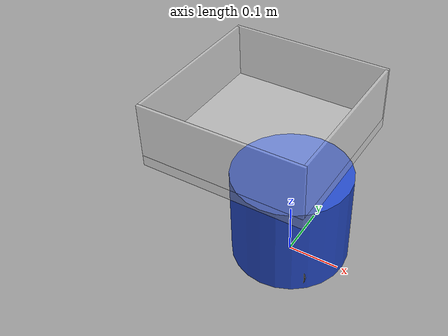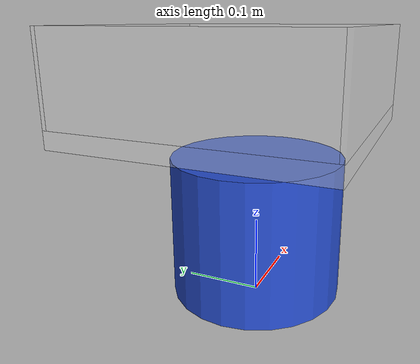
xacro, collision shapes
<?xml version="1.0"?>
<robot name="fra2mo" xmlns:xacro="http://www.ros.org/wiki/xacro">

  <xacro:include filename="$(find ros2_fra2mo)/urdf/fra2mo_base_macro.xacro"/>
  <xacro:include filename="$(find ros2_fra2mo)/urdf/lidar_gazebo_macro.xacro"/>

  <xacro:property name="LIDAR" value="True"/>

  <xacro:fra2mo_base/>

  <xacro:if value="${LIDAR}">
    <xacro:lidar_gazebo_sensor parent="lidar_link"/>
  </xacro:if>

  <gazebo>
    <plugin filename="libignition-gazebo-joint-state-publisher-system.so"
            name="ignition::gazebo::systems::JointStatePublisher">
      <topic>model/fra2mo/joint_state</topic>
    </plugin>
  </gazebo>

</robot>

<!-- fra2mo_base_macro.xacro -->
<robot xmlns:xacro="http://www.ros.org/wiki/xacro">
  <xacro:include filename="$(find ros2_fra2mo)/urdf/utility_macro.xacro" />

  <xacro:macro name="fra2mo_base">

    <xacro:property name="base_height" value="0.180" />
    <xacro:property name="base_radius" value="0.11" />
    <xacro:property name="base_mass" value="5" />
    <xacro:property name="wheel_mass" value="2.5" />
    <xacro:property name="wheel_radius" value="0.035" />
    <xacro:property name="wheel_axle" value="0.130" />
    <xacro:property name="wheel_width" value="0.04" />

    <link name="base_footprint">
    </link>

    <link name="base_link">
      <inertial>
        <origin xyz="0 0 0" />
        <mass value="${base_mass}" />
        <xacro:cylinder_inertia m="${base_mass}" r="${base_radius}" h="${base_height}" />
      </inertial>
      <visual>
        <geometry>
          <mesh filename="file://$(find ros2_fra2mo)/meshes/rl_fra2mo_body.stl" scale="0.001 0.001 0.001" />
        </geometry>
        <material name="Blue" />
        <origin xyz="0 0 0" rpy="0 0 0" />
      </visual>
      <collision>
        <geometry>
          <cylinder length="${base_height}" radius="${base_radius}" />
        </geometry>
        <origin xyz="0 0.0 ${(base_height/2.0)-0.05}" rpy="0 0 0" />
      </collision>
      <collision>
        <geometry>
          <sphere radius="0.019" />
        </geometry>
        <origin xyz="-0.0825 0.0 -0.04" rpy="0 0 0" />
      </collision>
    </link>

    <link name="left_wheel_link">
      <visual>
        <geometry>
          <mesh filename="file://$(find ros2_fra2mo)/meshes/rl_fra2mo_wheel.stl" scale="0.001 0.001 0.001" />
        </geometry>
        <material name="Black" />
        <origin xyz="0 0 0" rpy="0 0 0" />
      </visual>

      <collision>
        <geometry>
          <cylinder length="${wheel_width}" radius="${wheel_radius}" />
        </geometry>
        <origin xyz="0 0 0" rpy="${M_PI/2} 0 0" />
      </collision>

      <inertial>
        <origin xyz="0 0 0" />
        <mass value="${wheel_mass}" />
        <inertia ixx="0.001" ixy="0.0" ixz="0.0" iyy="0.001" iyz="0.0" izz="0.001" />
      </inertial>
    </link>

    <link name="right_wheel_link">
      <visual>
        <geometry>
          <mesh filename="file://$(find ros2_fra2mo)/meshes/rl_fra2mo_wheel.stl" scale="0.001 0.001 0.001" />
        </geometry>
        <material name="Black"/>
        <origin xyz="0 0 0" rpy="0 0 0" />
      </visual>

      <collision>
        <geometry>
           <cylinder length="${wheel_width}" radius="${wheel_radius}" />
        </geometry>
        <origin xyz="0 0 0" rpy="${M_PI/2} 0 0" />
      </collision>

      <inertial>
        <origin xyz="0 0 0" />
        <mass value="${wheel_mass}" />
        <inertia ixx="0.001" ixy="0.0" ixz="0.0" iyy="0.001" iyz="0.0" izz="0.001" />
      </inertial>
    </link>

    <link name="d435_link">
    </link>
    <link name="lidar_link" />

    <joint name="base_footprint_joint" type="fixed">
      <parent link="base_footprint" />
      <child link="base_link" />
      <origin xyz="0.0 0.0 0.059" rpy="0 0 0" />
    </joint>

    <joint name="left_wheel_joint" type="continuous">
      <parent link="base_link" />
      <child link="left_wheel_link" />
      <origin xyz="0.04025 0.062 -0.024" rpy="0 0 0" />
      <axis xyz="0 1 0" />
      <limit effort="100" velocity="100" />
      <dynamics damping="0.5" friction="0.01" />
    </joint>

    <joint name="right_wheel_joint" type="continuous">
      <parent link="base_link" />
      <child link="right_wheel_link" />
      <origin xyz="0.04025 -0.062 -0.024" rpy="0 0 ${-M_PI}" />
      <axis xyz="0 -1 0" />
      <limit effort="100" velocity="100" />
      <dynamics damping="0.5" friction="0.01" />
    </joint>

    <joint name="d435_joint" type="fixed">
      <parent link="base_link" />
      <child link="d435_link" />
      <origin xyz="0.090925 0.0 0.06670" rpy="0 0 0" />
    </joint>

    <joint name="lidar_joint" type="fixed">
      <parent link="base_link" />
      <child link="lidar_link" />
      <origin xyz="0.0 0.0 0.125" rpy="0 0 0" />
    </joint>

    <transmission name="left_wheel_joint_trans">
      <type>transmission_interface/SimpleTransmission</type>
      <joint name="left_wheel_joint" />
      <actuator name="left_wheel_joint_motor">
        <mechanicalReduction>1</mechanicalReduction>
        <hardwareInterface>EffortJointInterface</hardwareInterface>
      </actuator>
    </transmission>

    <transmission name="right_wheel_joint_trans">
      <type>transmission_interface/SimpleTransmission</type>
      <joint name="right_wheel_joint" />
      <actuator name="right_wheel_joint_motor">
        <mechanicalReduction>1</mechanicalReduction>
        <hardwareInterface>EffortJointInterface</hardwareInterface>
      </actuator>
    </transmission>

    <gazebo>
      <plugin name="ignition::gazebo::systems::DiffDrive" filename="libignition-gazebo-diff-drive-system.so">
        <left_joint>left_wheel_joint</left_joint>
        <right_joint>right_wheel_joint</right_joint>
        <wheel_separation>${2*0.062}</wheel_separation>
        <wheel_radius>${wheel_radius}</wheel_radius>
        <odom_publish_frequency>50</odom_publish_frequency>
        <topic>cmd_vel</topic>
      </plugin>
    </gazebo>

    <xacro:property name="basket_length" value="0.30" />
    <xacro:property name="basket_width" value="0.30" />
    <xacro:property name="basket_height" value="0.02" />
    <xacro:property name="basket_mass" value="0.5" />

    <xacro:property name="wall_thickness" value="0.005" />
    <xacro:property name="wall_height" value="0.10" />

    <link name="basket_link">
        <inertial>
            <origin xyz="0 0 0"/>
            <mass value="${basket_mass}"/>
            <inertia ixx="0.01" ixy="0" ixz="0" iyy="0.01" iyz="0" izz="0.01"/>
        </inertial>
        <visual>
            <geometry>
                <box size="${basket_length} ${basket_width} ${basket_height}"/>
            </geometry>
            <material name="White">
                <color rgba="0.9 0.9 0.9 0.4"/>
            </material>
            <origin rpy="0 0 0" xyz="0 0 0"/>
        </visual>
        <collision>
            <geometry>
                <box size="${basket_length} ${basket_width} ${basket_height}"/>
            </geometry>
            <origin rpy="0 0 0" xyz="0 0 0"/>
        </collision>
    </link>

    <joint name="basket_fixed_joint" type="fixed">
        <parent link="base_link"/>
        <child link="basket_link"/>
        <origin xyz="-0.05 0 0.18" rpy="0 0 0"/>
    </joint>

    <xacro:macro name="basket_wall" params="name length width height x y z">
        <link name="${name}_link">
            <visual>
                <geometry>
                    <box size="${length} ${width} ${height}"/>
                </geometry>
                <material name="TransparentPlastic">
                    <color rgba="0.9 0.9 0.9 0.4"/>
                </material>
            </visual>
            <collision>
                <geometry>
                    <box size="${length} ${width} ${height}"/>
                </geometry>
            </collision>
            <inertial>
                <mass value="0.01"/>
                <inertia ixx="0.0001" ixy="0" ixz="0" iyy="0.0001" iyz="0" izz="0.0001"/>
            </inertial>
        </link>
        <joint name="${name}_joint" type="fixed">
            <parent link="basket_link"/>
            <child link="${name}_link"/>
            <origin xyz="${x} ${y} ${z}" rpy="0 0 0"/>
        </joint>
    </xacro:macro>

    <xacro:property name="wall_z" value="${basket_height/2 + wall_height/2}" />

    <xacro:basket_wall name="wall_right"
        length="${basket_length}" width="${wall_thickness}" height="${wall_height}"
        x="0" y="${basket_width/2 - wall_thickness/2}" z="${wall_z}" />

    <xacro:basket_wall name="wall_left"
        length="${basket_length}" width="${wall_thickness}" height="${wall_height}"
        x="0" y="${-basket_width/2 + wall_thickness/2}" z="${wall_z}" />

    <xacro:basket_wall name="wall_front"
        length="${wall_thickness}" width="${basket_width - 2*wall_thickness}" height="${wall_height}"
        x="${basket_length/2 - wall_thickness/2}" y="0" z="${wall_z}" />

    <xacro:basket_wall name="wall_back"
        length="${wall_thickness}" width="${basket_width - 2*wall_thickness}" height="${wall_height}"
        x="${-basket_length/2 + wall_thickness/2}" y="0" z="${wall_z}" />
  </xacro:macro>
</robot>

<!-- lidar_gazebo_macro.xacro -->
<robot xmlns:xacro="http://www.ros.org/wiki/xacro" name="lidar_gazebo_macro" >

  <xacro:macro name="lidar_gazebo_sensor" params="parent">

    <link name="laser_frame">
      <inertial>
        <origin xyz="0 0 0" />
        <mass value="0.1" />
        <xacro:cylinder_inertia m="0.1" r="0.037" h="0.04" />
      </inertial>
      <visual>
        <origin rpy="0 0 ${-M_PI_2}" xyz="0.0 0.0 -0.031" />
        <geometry>
          <mesh filename="file://$(find ros2_fra2mo)/meshes/lidar.stl" scale="0.001 0.001 0.001" />
        </geometry>
        <material name="White" />
      </visual>
      <collision>
        <origin xyz="0.0 0.0 -0.031" rpy="0 0 0" />
        <geometry>
          <cylinder length="0.04" radius="0.037" />
        </geometry>
      </collision>
    </link>

    <joint name="laser_joint" type="fixed">
      <parent link="${parent}" />
      <child link="laser_frame" />
      <origin rpy="0 0 0" xyz="0.0 0.0 0.031" />
    </joint>

    <gazebo reference="laser_frame">
      <sensor name="laser_frame" type="gpu_lidar">
          <topic>lidar</topic>
          <update_rate>10</update_rate>
          <ray>
              <scan>
                  <horizontal>
                      <samples>640</samples>
                      <resolution>1</resolution>
                      <min_angle>-3.14</min_angle>
                      <max_angle>3.14</max_angle>
                  </horizontal>
              </scan>
              <range>
                  <min>0.1</min>
                  <max>10.0</max>
                  <resolution>0.01</resolution>
              </range>
            </ray>
            <always_on>true</always_on>
            <visualize>true</visualize>
            <ignition_frame_id>laser_frame</ignition_frame_id>
        </sensor>
    </gazebo>

  </xacro:macro>
</robot>
